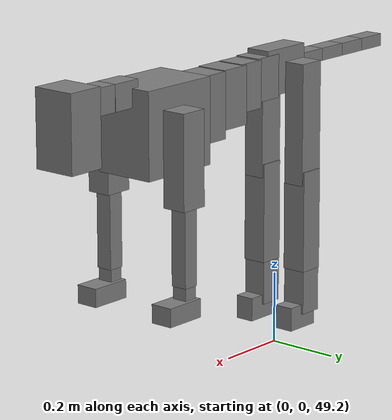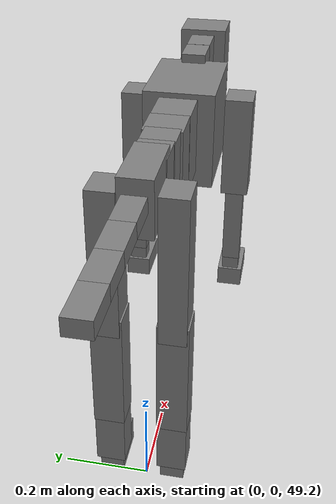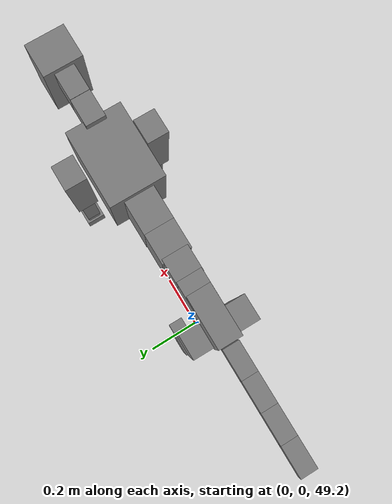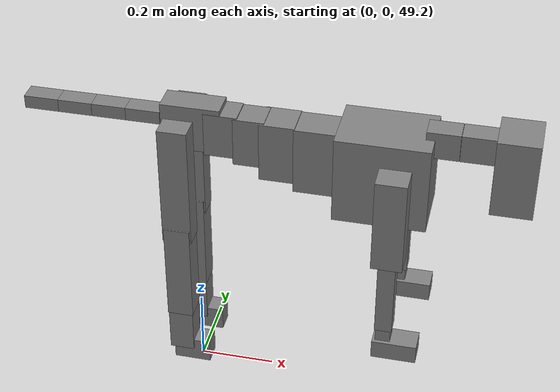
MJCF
<mujoco model="dog">

    <default>
        <joint armature="0.02" stiffness="1" damping="0.2" limited="true"/>
        <geom condim="3" friction="1 0.05 0.05" margin="0.01"/>
        <motor ctrllimited="true" ctrlrange="-1.0 1.0" forcelimited="true" gear="50"/>
    </default>

    <compiler inertiafromgeom="true" angle="radian"/>

    <option timestep="0.016" iterations="50" tolerance="1e-10" solver="Newton" jacobian="dense" cone="pyramidal"/>

    <size nconmax="20000" njmax="60000" nstack="5000000"/>
    <visual>
        <map force="0.1" zfar="30"/>
        <rgba haze="0.15 0.25 0.35 1"/>
        <quality shadowsize="2048"/>
        <global offwidth="800" offheight="800"/>
    </visual>

    <asset>
        <texture type="skybox" builtin="gradient" rgb1="0.3 0.5 0.7" rgb2="0 0 0" width="512" height="512"/>
        <texture name="texplane" type="2d" builtin="checker" rgb1=".2 .3 .4" rgb2=".1 0.15 0.2" width="512" height="512"
                 mark="cross" markrgb=".8 .8 .8"/>
        <texture name="texgeom" type="cube" builtin="flat" mark="cross" width="127" height="1278" rgb1="0.8 0.6 0.4"
                 rgb2="0.8 0.6 0.4" markrgb="1 1 1" random="0.01"/>

        <material name="matplane" reflectance="0.3" texture="texplane" texrepeat="1 1" texuniform="true"/>
        <material name="matgeom" texture="texgeom" texuniform="true" rgba="0.8 0.6 .4 1"/>
    </asset>

    <worldbody>
        <geom name="floor" pos="0 0 0" size="0 0 .25" type="plane" material="matplane" condim="3"/>

        <light directional="false" diffuse=".2 .2 .2" specular="0 0 0" pos="0 0 5" dir="0 0 -1" castshadow="false"/>
        <light mode="targetbodycom" target="torso" directional="false" diffuse=".8 .8 .8" specular="0.3 0.3 0.3"
               pos="0 0 4.0" dir="0 0 -1"/>

        <body name="root" pos="0 0 50">
            <freejoint name="root_1"/>
            <geom type="box" pos="0 0 -0.02" size="0.0774  0.0358  0.063" density="2030"/>

            <body name="spine1" pos="0.054 0 0">
                <joint name="spine1_y" axis="0 1 0" range="0 0.7" limited="true"/>
                <geom type="box" pos="0.02375 0 -0.03" size="0.04375  0.0375  0.05985" density="2030"/>

                <body name="spine2" pos="0.0612 0 0">
                    <joint name="spine2_y" axis="0 1 0" range="-0.15 0.15" limited="true"/>
                    <geom type="box" pos="0.03555  0  -0.04" size="0.04055  0.039  0.06615" density="2030"/>

                    <body name="spine3" pos="0.0730 0 0">
                        <joint name="spine3_y" axis="0 1 0" range="-0.15 0.15" limited="true"/>
                        <geom type="box" pos="0.03555  0  -0.057" size="0.04555  0.0445  0.081" density="2030"/>

                        <body name="spine4" pos="0.0780 0 0">
                            <joint name="spine4_y" axis="0 1 0" range="-0.15 0.15" limited="true"/>
                            <geom type="box" pos="0.05265  0  -0.07" size="0.05265  0.045  0.09135" density="2030"/>

                            <body name="torso" pos="0.1082 0 0">
                                <joint name="torso_y" axis="0 1 0" range="-0.15 0.15" limited="true"/>
                                <geom type="box" pos="0.11925  0  -0.085" size="0.11925  0.085  0.11745"
                                      density="2030"/>

                                <body name="neck1" pos="0.2160  0   0.0180">
                                    <joint name="neck1_y" axis="0 1 0" range="-1.2  -1" limited="true"/>
                                    <geom type="box" pos="0.0423  0  0" size="0.0423  0.03  0.036" density="2325"/>

                                    <body name="neck2" pos="0.0853  0  0">
                                        <joint name="neck2_y" axis="0 1 0" range="0.1  0" limited="true"/>
                                        <geom type="box" pos="0.0423  0  0" size="0.0423  0.03  0.036" density="2325"/>

                                        <body name="head" pos="0.0853  0  0">
                                            <joint name="head_y" axis="0 1 0" range="-0.3  -0.2" limited="true"/>
                                            <geom type="box" pos="0.0531  0  -0.055" size="0.0531  0.06  0.1044"
                                                  density="4030"/>

                                        </body>
                                    </body>
                                </body>

                                <body name="front_shoulder" pos="0.156  0   -0.0480">
                                    <joint name="front_shoulder_y" axis="0 1 0" range="-1 1.5" limited="true"/>
                                    <geom type="box" pos="0 0.13 -0.1013" size="0.0398  0.0341  0.1280" density="1158"/>
                                    <geom type="box" pos="0 -0.13 -0.1013" size="0.0398  0.0341  0.1280"
                                          density="1158"/>

                                    <body name="front_elbow" pos="0  0  -0.2026">
                                        <joint name="front_elbow_y" axis="0 1 0" range="-2 0" limited="true"/>
                                        <geom type="box" pos="0 0.13 -0.1178" size="0.0224  0.0229  0.1178"
                                              density="1081"/>
                                        <geom type="box" pos="0 -0.13 -0.1178" size="0.0224  0.0229  0.1178"
                                              density="1081"/>

                                        <body name="front_wrist" pos="0  0  -0.2356">
                                            <joint name="front_wrist_y" axis="0 1 0" range="-0.2 0" limited="true"/>
                                            <geom type="box" pos="0 0.13 -0.0245" size="0.0195  0.0216  0.0377"
                                                  density="1664"/>
                                            <geom type="box" pos="0 -0.13 -0.0245" size="0.0195  0.0216  0.0377"
                                                  density="1664"/>

                                            <body name="front_finger_end" pos="0  0  -0.0490">
                                                <joint name="front_finger_y" axis="0 1 0" range="-0.4 1"
                                                       limited="true"/>
                                                <geom type="box" pos="0.0318  0.13  -0.0104"
                                                      size="0.0584  0.0318  0.0254" density="1515"/>
                                                <geom type="box" pos="0.0318  -0.13  -0.0104"
                                                      size="0.0584  0.0318  0.0254" density="1515"/>

                                            </body>

                                        </body>
                                    </body>
                                </body>

                            </body>
                        </body>
                    </body>
                </body>
            </body>

            <body name="back_hip" pos="-0.03 0 -0.018">
                <joint name="back_hip_y" axis="0 1 0" range="-1.5 0.3" limited="true"/>
                <geom type="box" pos="0 0.07 -0.1466" size="0.0384  0.0302  0.1694" density="1154"/>
                <geom type="box" pos="0 -0.07 -0.1466" size="0.0384  0.0302  0.1694" density="1154"/>

                <body name="back_knee" pos="0  0  -0.2933">
                    <joint name="back_knee_y" axis="0 1 0" range="0 2.8" limited="true"/>
                    <geom type="box" pos="0 0.07 -0.1255" size="0.0346  0.0341  0.1411" density="1227"/>
                    <geom type="box" pos="0 -0.07 -0.1255" size="0.0346  0.0341  0.1411" density="1227"/>

                    <body name="back_ankle" pos="0  0  -0.2510">
                        <joint name="back_ankle_y" axis="0 1 0" range="-2.2 0" limited="true"/>
                        <geom type="box" pos="0 0.07 -0.0630" size="0.0329  0.0329  0.0743" density="1284"/>
                        <geom type="box" pos="0 -0.07 -0.0630" size="0.0329  0.0329  0.0743" density="1284"/>

                        <body name="back_toe_end" pos="0  0  -0.1260">
                            <joint name="back_toe_y" axis="0 1 0" range="-0.4 1" limited="true"/>
                            <geom type="box" pos="0.0271  0.07  -0.0180" size="0.0497  0.0271  0.0330" density="1515"/>
                            <geom type="box" pos="0.0271  -0.07  -0.0180" size="0.0497  0.0271  0.0330" density="1515"/>

                        </body>
                    </body>
                </body>
            </body>

            <body name="tail1" pos="-0.074 0 -0.006">
                <joint name="tail1_y" axis="0 1 0" range="-0.2 0.2" limited="true"/>
                <geom type="box" pos="-0.0536  0  0" size="0.045  0.025  0.0175" density="1587"/>

                <body name="tail2" pos="-0.09 0 0">
                    <joint name="tail2_y" axis="0 1 0" range="-0.2 0.2" limited="true"/>
                    <geom type="box" pos="-0.0536  0  0" size="0.045  0.025  0.0175" density="1587"/>

                    <body name="tail3" pos="-0.09 0 0">
                        <joint name="tail3_y" axis="0 1 0" range="-0.2 0.2" limited="true"/>
                        <geom type="box" pos="-0.0536  0  0" size="0.045  0.025  0.0175" density="1587"/>

                        <body name="tail4" pos="-0.09 0 0">
                            <joint name="tail4_y" axis="0 1 0" range="-0.2 0.2" limited="true"/>
                            <geom type="box" pos="-0.0536  0  0" size="0.045  0.025  0.0175" density="1587"/>

                        </body>
                    </body>
                </body>
            </body>
        </body>
    </worldbody>

    <actuator>
        <motor joint="spine1_y" forcerange="-150 150     "/>
        <motor joint="spine2_y" forcerange="-150 150     "/>
        <motor joint="spine3_y" forcerange="-150 150     "/>
        <motor joint="spine4_y" forcerange="-150 150     "/>
        <motor joint="torso_y" forcerange="-150 150     "/>
        <motor joint="neck1_y" forcerange="-100 100       "/>
        <motor joint="neck2_y" forcerange="-100 100       "/>
        <motor joint="head_y" forcerange="-150 150       "/>
        <motor joint="front_shoulder_y" forcerange="-157.97 169.05"/>
        <motor joint="front_elbow_y" forcerange="-102.14 164.76"/>
        <motor joint="front_wrist_y" forcerange="-109.77 63.13"/>
        <motor joint="front_finger_y" forcerange="-78.57 51.22"/>
        <motor joint="back_hip_y" forcerange="-372.43 229.58"/>
        <motor joint="back_knee_y" forcerange="-318.72 377.70"/>
        <motor joint="back_angle_y" forcerange="-228.17 197.71"/>
        <motor joint="back_toe_y" forcerange="-82.26 54.55"/>
        <motor joint="tail1_y" forcerange="-50 50     "/>
        <motor joint="tail2_y" forcerange="-50 50     "/>
        <motor joint="tail3_y" forcerange="-50 50     "/>
        <motor joint="tail4_y" forcerange="-50 50     "/>
    </actuator>
</mujoco>
